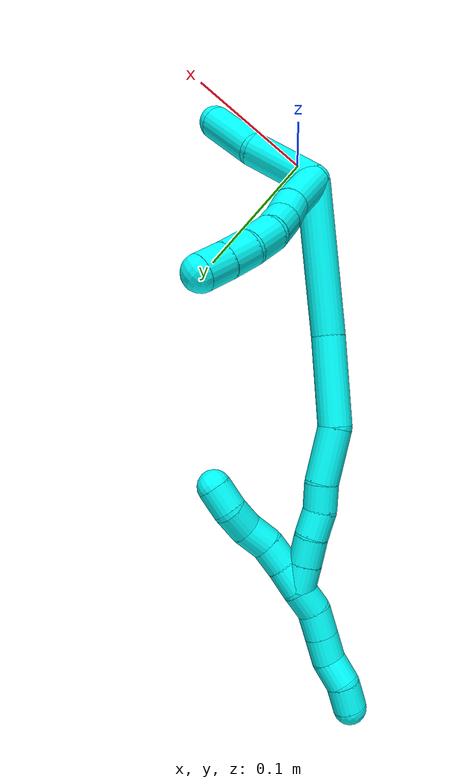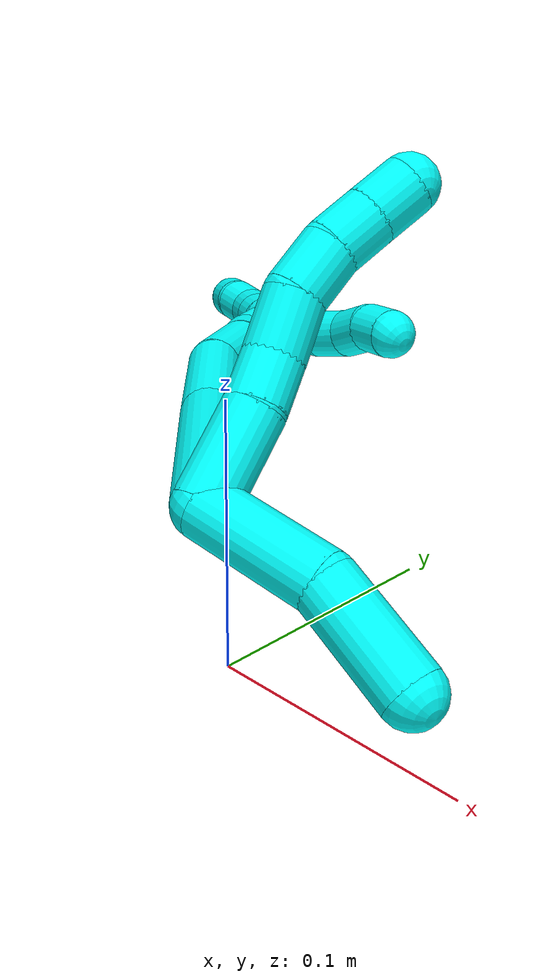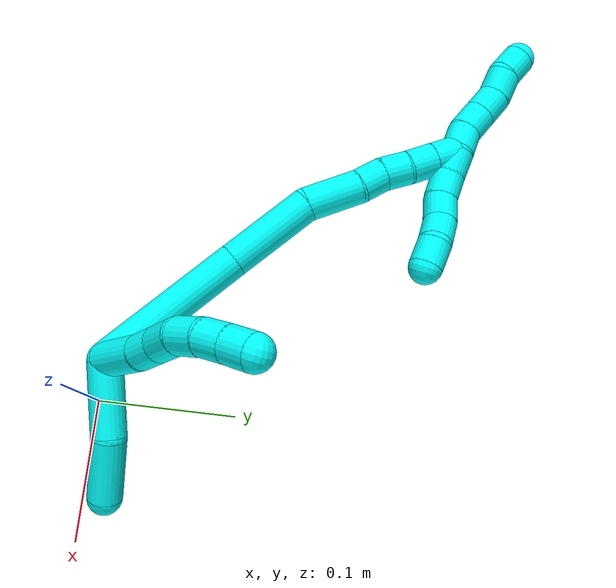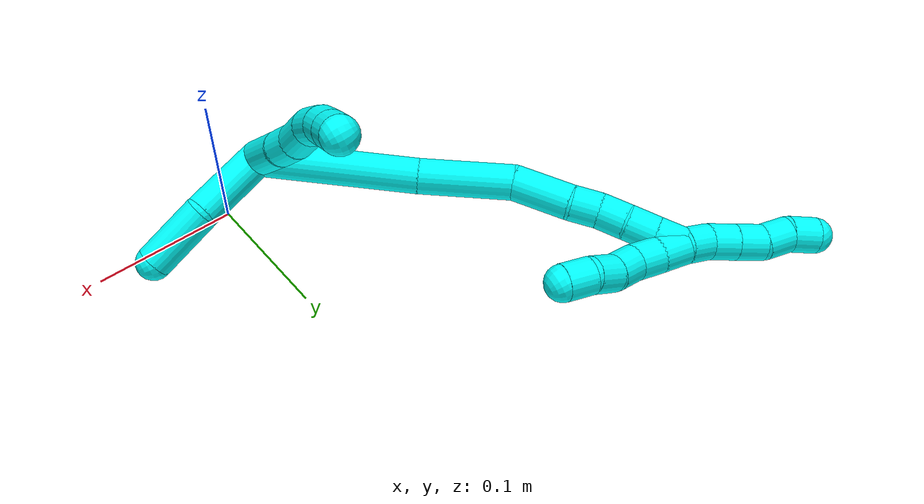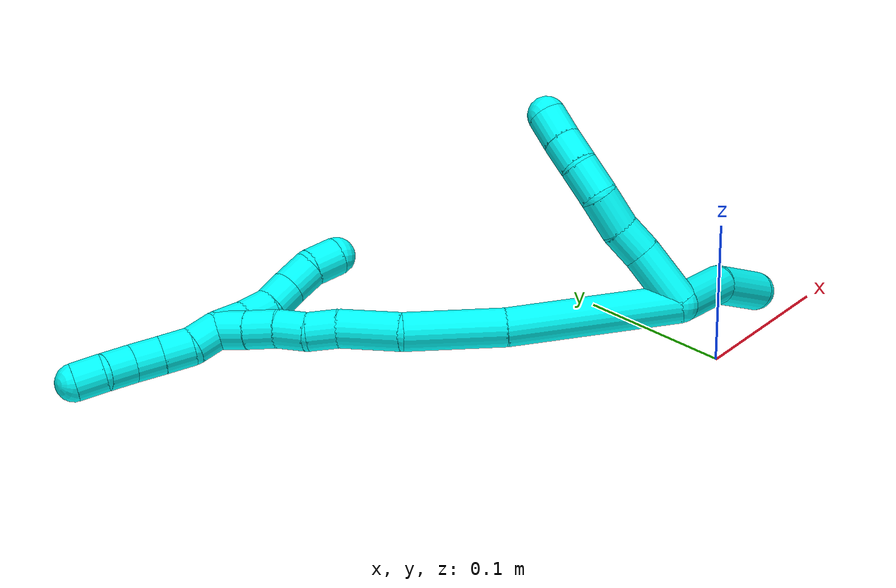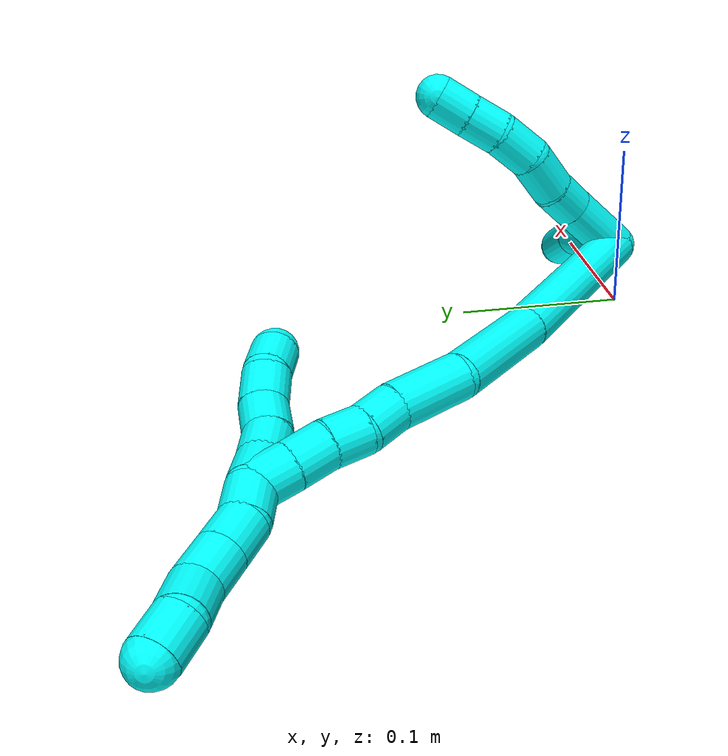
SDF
<sdf version="1.7">
 <world name="default">
  <model name="3">
   <static>0</static>
   <link name="3">
    <collision name="collision-cylinder-e_1_2_8">
     <pose>0.004335 0.018071 0.008075 -1.15056 0.215604 -0.140121</pose>
     <geometry><cylinder><radius>0.0125</radius><length>0.040524</length></cylinder></geometry>
     <surface>
      <friction><ode><mu>1.16</mu><mu2>1.16</mu2><slip1>0</slip1><slip2>0</slip2></ode></friction>
      <contact><ode><kp>1e+06</kp><kd>1</kd><max_vel>0</max_vel><min_depth>0.001</min_depth></ode></contact>
     </surface>
    </collision>
    <visual name="visual-cylinder-e_1_2_8">
     <pose>0.004335 0.018071 0.008075 -1.15056 0.215604 -0.140121</pose>
     <geometry><cylinder><radius>0.0125</radius><length>0.040524</length></cylinder></geometry>
     <material><ambient>0.003922 1 0.996078 1</ambient></material>
    </visual>
    <collision name="collision-cylinder-e_2_8_9">
     <pose>0.010896 0.044747 0.021564 -1.00926 0.215534 -0.119367</pose>
     <geometry><cylinder><radius>0.0125</radius><length>0.020817</length></cylinder></geometry>
     <surface>
      <friction><ode><mu>1.16</mu><mu2>1.16</mu2><slip1>0</slip1><slip2>0</slip2></ode></friction>
      <contact><ode><kp>1e+06</kp><kd>1</kd><max_vel>0</max_vel><min_depth>0.001</min_depth></ode></contact>
     </surface>
    </collision>
    <visual name="visual-cylinder-e_2_8_9">
     <pose>0.010896 0.044747 0.021564 -1.00926 0.215534 -0.119367</pose>
     <geometry><cylinder><radius>0.0125</radius><length>0.020817</length></cylinder></geometry>
     <material><ambient>0.003922 1 0.996078 1</ambient></material>
    </visual>
    <collision name="collision-cylinder-e_3_9_10">
     <pose>0.017865 0.063687 0.032493 -1.08062 0.384808 -0.232663</pose>
     <geometry><cylinder><radius>0.0125</radius><length>0.025274</length></cylinder></geometry>
     <surface>
      <friction><ode><mu>1.16</mu><mu2>1.16</mu2><slip1>0</slip1><slip2>0</slip2></ode></friction>
      <contact><ode><kp>1e+06</kp><kd>1</kd><max_vel>0</max_vel><min_depth>0.001</min_depth></ode></contact>
     </surface>
    </collision>
    <visual name="visual-cylinder-e_3_9_10">
     <pose>0.017865 0.063687 0.032493 -1.08062 0.384808 -0.232663</pose>
     <geometry><cylinder><radius>0.0125</radius><length>0.025274</length></cylinder></geometry>
     <material><ambient>0.003922 1 0.996078 1</ambient></material>
    </visual>
    <collision name="collision-cylinder-e_4_10_11">
     <pose>0.024493 0.085088 0.040811 -1.32266 0.16358 -0.127416</pose>
     <geometry><cylinder><radius>0.0125</radius><length>0.023142</length></cylinder></geometry>
     <surface>
      <friction><ode><mu>1.16</mu><mu2>1.16</mu2><slip1>0</slip1><slip2>0</slip2></ode></friction>
      <contact><ode><kp>1e+06</kp><kd>1</kd><max_vel>0</max_vel><min_depth>0.001</min_depth></ode></contact>
     </surface>
    </collision>
    <visual name="visual-cylinder-e_4_10_11">
     <pose>0.024493 0.085088 0.040811 -1.32266 0.16358 -0.127416</pose>
     <geometry><cylinder><radius>0.0125</radius><length>0.023142</length></cylinder></geometry>
     <material><ambient>0.003922 1 0.996078 1</ambient></material>
    </visual>
    <collision name="collision-cylinder-e_5_11_12">
     <pose>0.026593 0.106209 0.044594 -1.47369 0.021319 -0.019344</pose>
     <geometry><cylinder><radius>0.0125</radius><length>0.020208</length></cylinder></geometry>
     <surface>
      <friction><ode><mu>1.16</mu><mu2>1.16</mu2><slip1>0</slip1><slip2>0</slip2></ode></friction>
      <contact><ode><kp>1e+06</kp><kd>1</kd><max_vel>0</max_vel><min_depth>0.001</min_depth></ode></contact>
     </surface>
    </collision>
    <visual name="visual-cylinder-e_5_11_12">
     <pose>0.026593 0.106209 0.044594 -1.47369 0.021319 -0.019344</pose>
     <geometry><cylinder><radius>0.0125</radius><length>0.020208</length></cylinder></geometry>
     <material><ambient>0.003922 1 0.996078 1</ambient></material>
    </visual>
    <collision name="collision-cylinder-e_6_12_6">
     <pose>0.027237 0.126251 0.046209 -1.50728 0.042817 -0.040181</pose>
     <geometry><cylinder><radius>0.0125</radius><length>0.020035</length></cylinder></geometry>
     <surface>
      <friction><ode><mu>1.16</mu><mu2>1.16</mu2><slip1>0</slip1><slip2>0</slip2></ode></friction>
      <contact><ode><kp>1e+06</kp><kd>1</kd><max_vel>0</max_vel><min_depth>0.001</min_depth></ode></contact>
     </surface>
    </collision>
    <visual name="visual-cylinder-e_6_12_6">
     <pose>0.027237 0.126251 0.046209 -1.50728 0.042817 -0.040181</pose>
     <geometry><cylinder><radius>0.0125</radius><length>0.020035</length></cylinder></geometry>
     <material><ambient>0.003922 1 0.996078 1</ambient></material>
    </visual>
    <collision name="collision-cylinder-e_1_2_13">
     <pose>-0.004964 0.007621 -0.025013 -2.84586 -0.187624 1.12676</pose>
     <geometry><cylinder><radius>0.0125</radius><length>0.053231</length></cylinder></geometry>
     <surface>
      <friction><ode><mu>1.16</mu><mu2>1.16</mu2><slip1>0</slip1><slip2>0</slip2></ode></friction>
      <contact><ode><kp>1e+06</kp><kd>1</kd><max_vel>0</max_vel><min_depth>0.001</min_depth></ode></contact>
     </surface>
    </collision>
    <visual name="visual-cylinder-e_1_2_13">
     <pose>-0.004964 0.007621 -0.025013 -2.84586 -0.187624 1.12676</pose>
     <geometry><cylinder><radius>0.0125</radius><length>0.053231</length></cylinder></geometry>
     <material><ambient>0.003922 1 0.996078 1</ambient></material>
    </visual>
    <collision name="collision-cylinder-e_2_13_5">
     <pose>-0.017343 0.014975 -0.072203 3.12957 -0.322633 -3.06772</pose>
     <geometry><cylinder><radius>0.0125</radius><length>0.046769</length></cylinder></geometry>
     <surface>
      <friction><ode><mu>1.16</mu><mu2>1.16</mu2><slip1>0</slip1><slip2>0</slip2></ode></friction>
      <contact><ode><kp>1e+06</kp><kd>1</kd><max_vel>0</max_vel><min_depth>0.001</min_depth></ode></contact>
     </surface>
    </collision>
    <visual name="visual-cylinder-e_2_13_5">
     <pose>-0.017343 0.014975 -0.072203 3.12957 -0.322633 -3.06772</pose>
     <geometry><cylinder><radius>0.0125</radius><length>0.046769</length></cylinder></geometry>
     <material><ambient>0.003922 1 0.996078 1</ambient></material>
    </visual>
    <collision name="collision-cylinder-e_1_2_14">
     <pose>-0.028045 0.017803 0.044891 -0.377551 -0.526143 0.102814</pose>
     <geometry><cylinder><radius>0.0125</radius><length>0.11169</length></cylinder></geometry>
     <surface>
      <friction><ode><mu>1.16</mu><mu2>1.16</mu2><slip1>0</slip1><slip2>0</slip2></ode></friction>
      <contact><ode><kp>1e+06</kp><kd>1</kd><max_vel>0</max_vel><min_depth>0.001</min_depth></ode></contact>
     </surface>
    </collision>
    <visual name="visual-cylinder-e_1_2_14">
     <pose>-0.028045 0.017803 0.044891 -0.377551 -0.526143 0.102814</pose>
     <geometry><cylinder><radius>0.0125</radius><length>0.11169</length></cylinder></geometry>
     <material><ambient>0.003922 1 0.996078 1</ambient></material>
    </visual>
    <collision name="collision-cylinder-e_2_14_15">
     <pose>-0.07049 0.048342 0.116666 -0.442437 -0.45077 0.103039</pose>
     <geometry><cylinder><radius>0.0125</radius><length>0.066102</length></cylinder></geometry>
     <surface>
      <friction><ode><mu>1.16</mu><mu2>1.16</mu2><slip1>0</slip1><slip2>0</slip2></ode></friction>
      <contact><ode><kp>1e+06</kp><kd>1</kd><max_vel>0</max_vel><min_depth>0.001</min_depth></ode></contact>
     </surface>
    </collision>
    <visual name="visual-cylinder-e_2_14_15">
     <pose>-0.07049 0.048342 0.116666 -0.442437 -0.45077 0.103039</pose>
     <geometry><cylinder><radius>0.0125</radius><length>0.066102</length></cylinder></geometry>
     <material><ambient>0.003922 1 0.996078 1</ambient></material>
    </visual>
    <collision name="collision-cylinder-e_3_15_16">
     <pose>-0.096585 0.072816 0.155817 -0.763363 -0.603282 0.248471</pose>
     <geometry><cylinder><radius>0.0125</radius><length>0.04123</length></cylinder></geometry>
     <surface>
      <friction><ode><mu>1.16</mu><mu2>1.16</mu2><slip1>0</slip1><slip2>0</slip2></ode></friction>
      <contact><ode><kp>1e+06</kp><kd>1</kd><max_vel>0</max_vel><min_depth>0.001</min_depth></ode></contact>
     </surface>
    </collision>
    <visual name="visual-cylinder-e_3_15_16">
     <pose>-0.096585 0.072816 0.155817 -0.763363 -0.603282 0.248471</pose>
     <geometry><cylinder><radius>0.0125</radius><length>0.04123</length></cylinder></geometry>
     <material><ambient>0.003922 1 0.996078 1</ambient></material>
    </visual>
    <collision name="collision-cylinder-e_4_16_17">
     <pose>-0.114372 0.088699 0.175096 -0.533939 -0.641964 0.181366</pose>
     <geometry><cylinder><radius>0.0125</radius><length>0.020347</length></cylinder></geometry>
     <surface>
      <friction><ode><mu>1.16</mu><mu2>1.16</mu2><slip1>0</slip1><slip2>0</slip2></ode></friction>
      <contact><ode><kp>1e+06</kp><kd>1</kd><max_vel>0</max_vel><min_depth>0.001</min_depth></ode></contact>
     </surface>
    </collision>
    <visual name="visual-cylinder-e_4_16_17">
     <pose>-0.114372 0.088699 0.175096 -0.533939 -0.641964 0.181366</pose>
     <geometry><cylinder><radius>0.0125</radius><length>0.020347</length></cylinder></geometry>
     <material><ambient>0.003922 1 0.996078 1</ambient></material>
    </visual>
    <collision name="collision-cylinder-e_5_17_18">
     <pose>-0.126194 0.099126 0.187489 -0.862528 -0.606073 0.285787</pose>
     <geometry><cylinder><radius>0.0125</radius><length>0.02012</length></cylinder></geometry>
     <surface>
      <friction><ode><mu>1.16</mu><mu2>1.16</mu2><slip1>0</slip1><slip2>0</slip2></ode></friction>
      <contact><ode><kp>1e+06</kp><kd>1</kd><max_vel>0</max_vel><min_depth>0.001</min_depth></ode></contact>
     </surface>
    </collision>
    <visual name="visual-cylinder-e_5_17_18">
     <pose>-0.126194 0.099126 0.187489 -0.862528 -0.606073 0.285787</pose>
     <geometry><cylinder><radius>0.0125</radius><length>0.02012</length></cylinder></geometry>
     <material><ambient>0.003922 1 0.996078 1</ambient></material>
    </visual>
    <collision name="collision-cylinder-e_6_18_19">
     <pose>-0.138549 0.1106 0.198725 -0.725592 -0.702232 0.276317</pose>
     <geometry><cylinder><radius>0.0125</radius><length>0.02051</length></cylinder></geometry>
     <surface>
      <friction><ode><mu>1.16</mu><mu2>1.16</mu2><slip1>0</slip1><slip2>0</slip2></ode></friction>
      <contact><ode><kp>1e+06</kp><kd>1</kd><max_vel>0</max_vel><min_depth>0.001</min_depth></ode></contact>
     </surface>
    </collision>
    <visual name="visual-cylinder-e_6_18_19">
     <pose>-0.138549 0.1106 0.198725 -0.725592 -0.702232 0.276317</pose>
     <geometry><cylinder><radius>0.0125</radius><length>0.02051</length></cylinder></geometry>
     <material><ambient>0.003922 1 0.996078 1</ambient></material>
    </visual>
    <collision name="collision-cylinder-e_7_19_1">
     <pose>-0.151387 0.121174 0.210279 -0.756562 -0.670511 0.275179</pose>
     <geometry><cylinder><radius>0.0125</radius><length>0.020001</length></cylinder></geometry>
     <surface>
      <friction><ode><mu>1.16</mu><mu2>1.16</mu2><slip1>0</slip1><slip2>0</slip2></ode></friction>
      <contact><ode><kp>1e+06</kp><kd>1</kd><max_vel>0</max_vel><min_depth>0.001</min_depth></ode></contact>
     </surface>
    </collision>
    <visual name="visual-cylinder-e_7_19_1">
     <pose>-0.151387 0.121174 0.210279 -0.756562 -0.670511 0.275179</pose>
     <geometry><cylinder><radius>0.0125</radius><length>0.020001</length></cylinder></geometry>
     <material><ambient>0.003922 1 0.996078 1</ambient></material>
    </visual>
    <collision name="collision-cylinder-e_1_1_20">
     <pose>-0.155078 0.127245 0.206326 -3.0699 0.255107 -2.5963</pose>
     <geometry><cylinder><radius>0.0125</radius><length>0.02</length></cylinder></geometry>
     <surface>
      <friction><ode><mu>1.16</mu><mu2>1.16</mu2><slip1>0</slip1><slip2>0</slip2></ode></friction>
      <contact><ode><kp>1e+06</kp><kd>1</kd><max_vel>0</max_vel><min_depth>0.001</min_depth></ode></contact>
     </surface>
    </collision>
    <visual name="visual-cylinder-e_1_1_20">
     <pose>-0.155078 0.127245 0.206326 -3.0699 0.255107 -2.5963</pose>
     <geometry><cylinder><radius>0.0125</radius><length>0.02</length></cylinder></geometry>
     <material><ambient>0.003922 1 0.996078 1</ambient></material>
    </visual>
    <collision name="collision-cylinder-e_2_20_21">
     <pose>-0.149443 0.129415 0.187286 -2.98558 0.316341 -2.23029</pose>
     <geometry><cylinder><radius>0.0125</radius><length>0.02</length></cylinder></geometry>
     <surface>
      <friction><ode><mu>1.16</mu><mu2>1.16</mu2><slip1>0</slip1><slip2>0</slip2></ode></friction>
      <contact><ode><kp>1e+06</kp><kd>1</kd><max_vel>0</max_vel><min_depth>0.001</min_depth></ode></contact>
     </surface>
    </collision>
    <visual name="visual-cylinder-e_2_20_21">
     <pose>-0.149443 0.129415 0.187286 -2.98558 0.316341 -2.23029</pose>
     <geometry><cylinder><radius>0.0125</radius><length>0.02</length></cylinder></geometry>
     <material><ambient>0.003922 1 0.996078 1</ambient></material>
    </visual>
    <collision name="collision-cylinder-e_3_21_22">
     <pose>-0.143427 0.135155 0.169331 -2.67975 0.294742 -1.12636</pose>
     <geometry><cylinder><radius>0.0125</radius><length>0.02</length></cylinder></geometry>
     <surface>
      <friction><ode><mu>1.16</mu><mu2>1.16</mu2><slip1>0</slip1><slip2>0</slip2></ode></friction>
      <contact><ode><kp>1e+06</kp><kd>1</kd><max_vel>0</max_vel><min_depth>0.001</min_depth></ode></contact>
     </surface>
    </collision>
    <visual name="visual-cylinder-e_3_21_22">
     <pose>-0.143427 0.135155 0.169331 -2.67975 0.294742 -1.12636</pose>
     <geometry><cylinder><radius>0.0125</radius><length>0.02</length></cylinder></geometry>
     <material><ambient>0.003922 1 0.996078 1</ambient></material>
    </visual>
    <collision name="collision-cylinder-e_4_22_23">
     <pose>-0.135192 0.142578 0.152915 -2.75899 0.56217 -1.95992</pose>
     <geometry><cylinder><radius>0.0125</radius><length>0.02</length></cylinder></geometry>
     <surface>
      <friction><ode><mu>1.16</mu><mu2>1.16</mu2><slip1>0</slip1><slip2>0</slip2></ode></friction>
      <contact><ode><kp>1e+06</kp><kd>1</kd><max_vel>0</max_vel><min_depth>0.001</min_depth></ode></contact>
     </surface>
    </collision>
    <visual name="visual-cylinder-e_4_22_23">
     <pose>-0.135192 0.142578 0.152915 -2.75899 0.56217 -1.95992</pose>
     <geometry><cylinder><radius>0.0125</radius><length>0.02</length></cylinder></geometry>
     <material><ambient>0.003922 1 0.996078 1</ambient></material>
    </visual>
    <collision name="collision-cylinder-e_5_23_4">
     <pose>-0.126576 0.146776 0.135679 -3.03135 0.334841 -2.51042</pose>
     <geometry><cylinder><radius>0.0125</radius><length>0.02</length></cylinder></geometry>
     <surface>
      <friction><ode><mu>1.16</mu><mu2>1.16</mu2><slip1>0</slip1><slip2>0</slip2></ode></friction>
      <contact><ode><kp>1e+06</kp><kd>1</kd><max_vel>0</max_vel><min_depth>0.001</min_depth></ode></contact>
     </surface>
    </collision>
    <visual name="visual-cylinder-e_5_23_4">
     <pose>-0.126576 0.146776 0.135679 -3.03135 0.334841 -2.51042</pose>
     <geometry><cylinder><radius>0.0125</radius><length>0.02</length></cylinder></geometry>
     <material><ambient>0.003922 1 0.996078 1</ambient></material>
    </visual>
    <collision name="collision-cylinder-e_1_1_24">
     <pose>-0.161934 0.124627 0.224782 0.215224 -0.448133 -0.049228</pose>
     <geometry><cylinder><radius>0.0125</radius><length>0.02</length></cylinder></geometry>
     <surface>
      <friction><ode><mu>1.16</mu><mu2>1.16</mu2><slip1>0</slip1><slip2>0</slip2></ode></friction>
      <contact><ode><kp>1e+06</kp><kd>1</kd><max_vel>0</max_vel><min_depth>0.001</min_depth></ode></contact>
     </surface>
    </collision>
    <visual name="visual-cylinder-e_1_1_24">
     <pose>-0.161934 0.124627 0.224782 0.215224 -0.448133 -0.049228</pose>
     <geometry><cylinder><radius>0.0125</radius><length>0.02</length></cylinder></geometry>
     <material><ambient>0.003922 1 0.996078 1</ambient></material>
    </visual>
    <collision name="collision-cylinder-e_2_24_25">
     <pose>-0.171156 0.124027 0.242208 -0.152444 -0.510893 0.039883</pose>
     <geometry><cylinder><radius>0.0125</radius><length>0.02</length></cylinder></geometry>
     <surface>
      <friction><ode><mu>1.16</mu><mu2>1.16</mu2><slip1>0</slip1><slip2>0</slip2></ode></friction>
      <contact><ode><kp>1e+06</kp><kd>1</kd><max_vel>0</max_vel><min_depth>0.001</min_depth></ode></contact>
     </surface>
    </collision>
    <visual name="visual-cylinder-e_2_24_25">
     <pose>-0.171156 0.124027 0.242208 -0.152444 -0.510893 0.039883</pose>
     <geometry><cylinder><radius>0.0125</radius><length>0.02</length></cylinder></geometry>
     <material><ambient>0.003922 1 0.996078 1</ambient></material>
    </visual>
    <collision name="collision-cylinder-e_3_25_26">
     <pose>-0.180889 0.126744 0.259468 -0.159769 -0.505552 0.041351</pose>
     <geometry><cylinder><radius>0.0125</radius><length>0.02</length></cylinder></geometry>
     <surface>
      <friction><ode><mu>1.16</mu><mu2>1.16</mu2><slip1>0</slip1><slip2>0</slip2></ode></friction>
      <contact><ode><kp>1e+06</kp><kd>1</kd><max_vel>0</max_vel><min_depth>0.001</min_depth></ode></contact>
     </surface>
    </collision>
    <visual name="visual-cylinder-e_3_25_26">
     <pose>-0.180889 0.126744 0.259468 -0.159769 -0.505552 0.041351</pose>
     <geometry><cylinder><radius>0.0125</radius><length>0.02</length></cylinder></geometry>
     <material><ambient>0.003922 1 0.996078 1</ambient></material>
    </visual>
    <collision name="collision-cylinder-e_4_26_27">
     <pose>-0.188164 0.127991 0.277804 0.014924 -0.245685 -0.001843</pose>
     <geometry><cylinder><radius>0.0125</radius><length>0.02</length></cylinder></geometry>
     <surface>
      <friction><ode><mu>1.16</mu><mu2>1.16</mu2><slip1>0</slip1><slip2>0</slip2></ode></friction>
      <contact><ode><kp>1e+06</kp><kd>1</kd><max_vel>0</max_vel><min_depth>0.001</min_depth></ode></contact>
     </surface>
    </collision>
    <visual name="visual-cylinder-e_4_26_27">
     <pose>-0.188164 0.127991 0.277804 0.014924 -0.245685 -0.001843</pose>
     <geometry><cylinder><radius>0.0125</radius><length>0.02</length></cylinder></geometry>
     <material><ambient>0.003922 1 0.996078 1</ambient></material>
    </visual>
    <collision name="collision-cylinder-e_5_27_3">
     <pose>-0.195834 0.12903 0.295939 -0.139482 -0.551226 0.039506</pose>
     <geometry><cylinder><radius>0.0125</radius><length>0.02</length></cylinder></geometry>
     <surface>
      <friction><ode><mu>1.16</mu><mu2>1.16</mu2><slip1>0</slip1><slip2>0</slip2></ode></friction>
      <contact><ode><kp>1e+06</kp><kd>1</kd><max_vel>0</max_vel><min_depth>0.001</min_depth></ode></contact>
     </surface>
    </collision>
    <visual name="visual-cylinder-e_5_27_3">
     <pose>-0.195834 0.12903 0.295939 -0.139482 -0.551226 0.039506</pose>
     <geometry><cylinder><radius>0.0125</radius><length>0.02</length></cylinder></geometry>
     <material><ambient>0.003922 1 0.996078 1</ambient></material>
    </visual>
    <collision name="collision-sphere-3">
     <pose>-0.201071 0.130215 0.304375 0 -0 0</pose>
     <geometry><sphere><radius>0.0125</radius></sphere></geometry>
     <surface>
      <friction><ode><mu>1.16</mu><mu2>1.16</mu2><slip1>0</slip1><slip2>0</slip2></ode></friction>
      <contact><ode><kp>1e+06</kp><kd>1</kd><max_vel>0</max_vel><min_depth>0.001</min_depth></ode></contact>
     </surface>
    </collision>
    <visual name="visual-sphere-3">
     <pose>-0.201071 0.130215 0.304375 0 -0 0</pose>
     <geometry><sphere><radius>0.0125</radius></sphere></geometry>
     <material><ambient>0.003922 1 0.996078 1</ambient></material>
    </visual>
    <collision name="collision-sphere-27">
     <pose>-0.190596 0.127846 0.287503 0 -0 0</pose>
     <geometry><sphere><radius>0.0125</radius></sphere></geometry>
     <surface>
      <friction><ode><mu>1.16</mu><mu2>1.16</mu2><slip1>0</slip1><slip2>0</slip2></ode></friction>
      <contact><ode><kp>1e+06</kp><kd>1</kd><max_vel>0</max_vel><min_depth>0.001</min_depth></ode></contact>
     </surface>
    </collision>
    <visual name="visual-sphere-27">
     <pose>-0.190596 0.127846 0.287503 0 -0 0</pose>
     <geometry><sphere><radius>0.0125</radius></sphere></geometry>
     <material><ambient>0.003922 1 0.996078 1</ambient></material>
    </visual>
    <collision name="collision-sphere-26">
     <pose>-0.185732 0.128136 0.268105 0 -0 0</pose>
     <geometry><sphere><radius>0.0125</radius></sphere></geometry>
     <surface>
      <friction><ode><mu>1.16</mu><mu2>1.16</mu2><slip1>0</slip1><slip2>0</slip2></ode></friction>
      <contact><ode><kp>1e+06</kp><kd>1</kd><max_vel>0</max_vel><min_depth>0.001</min_depth></ode></contact>
     </surface>
    </collision>
    <visual name="visual-sphere-26">
     <pose>-0.185732 0.128136 0.268105 0 -0 0</pose>
     <geometry><sphere><radius>0.0125</radius></sphere></geometry>
     <material><ambient>0.003922 1 0.996078 1</ambient></material>
    </visual>
    <collision name="collision-sphere-25">
     <pose>-0.176046 0.125352 0.25083 0 -0 0</pose>
     <geometry><sphere><radius>0.0125</radius></sphere></geometry>
     <surface>
      <friction><ode><mu>1.16</mu><mu2>1.16</mu2><slip1>0</slip1><slip2>0</slip2></ode></friction>
      <contact><ode><kp>1e+06</kp><kd>1</kd><max_vel>0</max_vel><min_depth>0.001</min_depth></ode></contact>
     </surface>
    </collision>
    <visual name="visual-sphere-25">
     <pose>-0.176046 0.125352 0.25083 0 -0 0</pose>
     <geometry><sphere><radius>0.0125</radius></sphere></geometry>
     <material><ambient>0.003922 1 0.996078 1</ambient></material>
    </visual>
    <collision name="collision-sphere-24">
     <pose>-0.166267 0.122703 0.233586 0 -0 0</pose>
     <geometry><sphere><radius>0.0125</radius></sphere></geometry>
     <surface>
      <friction><ode><mu>1.16</mu><mu2>1.16</mu2><slip1>0</slip1><slip2>0</slip2></ode></friction>
      <contact><ode><kp>1e+06</kp><kd>1</kd><max_vel>0</max_vel><min_depth>0.001</min_depth></ode></contact>
     </surface>
    </collision>
    <visual name="visual-sphere-24">
     <pose>-0.166267 0.122703 0.233586 0 -0 0</pose>
     <geometry><sphere><radius>0.0125</radius></sphere></geometry>
     <material><ambient>0.003922 1 0.996078 1</ambient></material>
    </visual>
    <collision name="collision-sphere-4">
     <pose>-0.12329 0.147815 0.126292 0 -0 0</pose>
     <geometry><sphere><radius>0.0125</radius></sphere></geometry>
     <surface>
      <friction><ode><mu>1.16</mu><mu2>1.16</mu2><slip1>0</slip1><slip2>0</slip2></ode></friction>
      <contact><ode><kp>1e+06</kp><kd>1</kd><max_vel>0</max_vel><min_depth>0.001</min_depth></ode></contact>
     </surface>
    </collision>
    <visual name="visual-sphere-4">
     <pose>-0.12329 0.147815 0.126292 0 -0 0</pose>
     <geometry><sphere><radius>0.0125</radius></sphere></geometry>
     <material><ambient>0.003922 1 0.996078 1</ambient></material>
    </visual>
    <collision name="collision-sphere-23">
     <pose>-0.129862 0.145737 0.145066 0 -0 0</pose>
     <geometry><sphere><radius>0.0125</radius></sphere></geometry>
     <surface>
      <friction><ode><mu>1.16</mu><mu2>1.16</mu2><slip1>0</slip1><slip2>0</slip2></ode></friction>
      <contact><ode><kp>1e+06</kp><kd>1</kd><max_vel>0</max_vel><min_depth>0.001</min_depth></ode></contact>
     </surface>
    </collision>
    <visual name="visual-sphere-23">
     <pose>-0.129862 0.145737 0.145066 0 -0 0</pose>
     <geometry><sphere><radius>0.0125</radius></sphere></geometry>
     <material><ambient>0.003922 1 0.996078 1</ambient></material>
    </visual>
    <collision name="collision-sphere-22">
     <pose>-0.140523 0.139419 0.160765 0 -0 0</pose>
     <geometry><sphere><radius>0.0125</radius></sphere></geometry>
     <surface>
      <friction><ode><mu>1.16</mu><mu2>1.16</mu2><slip1>0</slip1><slip2>0</slip2></ode></friction>
      <contact><ode><kp>1e+06</kp><kd>1</kd><max_vel>0</max_vel><min_depth>0.001</min_depth></ode></contact>
     </surface>
    </collision>
    <visual name="visual-sphere-22">
     <pose>-0.140523 0.139419 0.160765 0 -0 0</pose>
     <geometry><sphere><radius>0.0125</radius></sphere></geometry>
     <material><ambient>0.003922 1 0.996078 1</ambient></material>
    </visual>
    <collision name="collision-sphere-21">
     <pose>-0.146332 0.130892 0.177897 0 -0 0</pose>
     <geometry><sphere><radius>0.0125</radius></sphere></geometry>
     <surface>
      <friction><ode><mu>1.16</mu><mu2>1.16</mu2><slip1>0</slip1><slip2>0</slip2></ode></friction>
      <contact><ode><kp>1e+06</kp><kd>1</kd><max_vel>0</max_vel><min_depth>0.001</min_depth></ode></contact>
     </surface>
    </collision>
    <visual name="visual-sphere-21">
     <pose>-0.146332 0.130892 0.177897 0 -0 0</pose>
     <geometry><sphere><radius>0.0125</radius></sphere></geometry>
     <material><ambient>0.003922 1 0.996078 1</ambient></material>
    </visual>
    <collision name="collision-sphere-20">
     <pose>-0.152554 0.127938 0.196674 0 -0 0</pose>
     <geometry><sphere><radius>0.0125</radius></sphere></geometry>
     <surface>
      <friction><ode><mu>1.16</mu><mu2>1.16</mu2><slip1>0</slip1><slip2>0</slip2></ode></friction>
      <contact><ode><kp>1e+06</kp><kd>1</kd><max_vel>0</max_vel><min_depth>0.001</min_depth></ode></contact>
     </surface>
    </collision>
    <visual name="visual-sphere-20">
     <pose>-0.152554 0.127938 0.196674 0 -0 0</pose>
     <geometry><sphere><radius>0.0125</radius></sphere></geometry>
     <material><ambient>0.003922 1 0.996078 1</ambient></material>
    </visual>
    <collision name="collision-sphere-12">
     <pose>0.026809 0.116263 0.045573 0 -0 0</pose>
     <geometry><sphere><radius>0.0125</radius></sphere></geometry>
     <surface>
      <friction><ode><mu>1.16</mu><mu2>1.16</mu2><slip1>0</slip1><slip2>0</slip2></ode></friction>
      <contact><ode><kp>1e+06</kp><kd>1</kd><max_vel>0</max_vel><min_depth>0.001</min_depth></ode></contact>
     </surface>
    </collision>
    <visual name="visual-sphere-12">
     <pose>0.026809 0.116263 0.045573 0 -0 0</pose>
     <geometry><sphere><radius>0.0125</radius></sphere></geometry>
     <material><ambient>0.003922 1 0.996078 1</ambient></material>
    </visual>
    <collision name="collision-sphere-11">
     <pose>0.026378 0.096155 0.043615 0 -0 0</pose>
     <geometry><sphere><radius>0.0125</radius></sphere></geometry>
     <surface>
      <friction><ode><mu>1.16</mu><mu2>1.16</mu2><slip1>0</slip1><slip2>0</slip2></ode></friction>
      <contact><ode><kp>1e+06</kp><kd>1</kd><max_vel>0</max_vel><min_depth>0.001</min_depth></ode></contact>
     </surface>
    </collision>
    <visual name="visual-sphere-11">
     <pose>0.026378 0.096155 0.043615 0 -0 0</pose>
     <geometry><sphere><radius>0.0125</radius></sphere></geometry>
     <material><ambient>0.003922 1 0.996078 1</ambient></material>
    </visual>
    <collision name="collision-sphere-10">
     <pose>0.022609 0.074021 0.038007 0 -0 0</pose>
     <geometry><sphere><radius>0.0125</radius></sphere></geometry>
     <surface>
      <friction><ode><mu>1.16</mu><mu2>1.16</mu2><slip1>0</slip1><slip2>0</slip2></ode></friction>
      <contact><ode><kp>1e+06</kp><kd>1</kd><max_vel>0</max_vel><min_depth>0.001</min_depth></ode></contact>
     </surface>
    </collision>
    <visual name="visual-sphere-10">
     <pose>0.022609 0.074021 0.038007 0 -0 0</pose>
     <geometry><sphere><radius>0.0125</radius></sphere></geometry>
     <material><ambient>0.003922 1 0.996078 1</ambient></material>
    </visual>
    <collision name="collision-sphere-9">
     <pose>0.013122 0.053354 0.026978 0 -0 0</pose>
     <geometry><sphere><radius>0.0125</radius></sphere></geometry>
     <surface>
      <friction><ode><mu>1.16</mu><mu2>1.16</mu2><slip1>0</slip1><slip2>0</slip2></ode></friction>
      <contact><ode><kp>1e+06</kp><kd>1</kd><max_vel>0</max_vel><min_depth>0.001</min_depth></ode></contact>
     </surface>
    </collision>
    <visual name="visual-sphere-9">
     <pose>0.013122 0.053354 0.026978 0 -0 0</pose>
     <geometry><sphere><radius>0.0125</radius></sphere></geometry>
     <material><ambient>0.003922 1 0.996078 1</ambient></material>
    </visual>
    <collision name="collision-sphere-2">
     <geometry><sphere><radius>0.0125</radius></sphere></geometry>
     <surface>
      <friction><ode><mu>1.16</mu><mu2>1.16</mu2><slip1>0</slip1><slip2>0</slip2></ode></friction>
      <contact><ode><kp>1e+06</kp><kd>1</kd><max_vel>0</max_vel><min_depth>0.001</min_depth></ode></contact>
     </surface>
    </collision>
    <visual name="visual-sphere-2">
     <geometry><sphere><radius>0.0125</radius></sphere></geometry>
     <material><ambient>0.003922 1 0.996078 1</ambient></material>
    </visual>
    <collision name="collision-sphere-19">
     <pose>-0.145173 0.115795 0.204581 0 -0 0</pose>
     <geometry><sphere><radius>0.0125</radius></sphere></geometry>
     <surface>
      <friction><ode><mu>1.16</mu><mu2>1.16</mu2><slip1>0</slip1><slip2>0</slip2></ode></friction>
      <contact><ode><kp>1e+06</kp><kd>1</kd><max_vel>0</max_vel><min_depth>0.001</min_depth></ode></contact>
     </surface>
    </collision>
    <visual name="visual-sphere-19">
     <pose>-0.145173 0.115795 0.204581 0 -0 0</pose>
     <geometry><sphere><radius>0.0125</radius></sphere></geometry>
     <material><ambient>0.003922 1 0.996078 1</ambient></material>
    </visual>
    <collision name="collision-sphere-8">
     <pose>0.00867 0.036141 0.01615 0 -0 0</pose>
     <geometry><sphere><radius>0.0125</radius></sphere></geometry>
     <surface>
      <friction><ode><mu>1.16</mu><mu2>1.16</mu2><slip1>0</slip1><slip2>0</slip2></ode></friction>
      <contact><ode><kp>1e+06</kp><kd>1</kd><max_vel>0</max_vel><min_depth>0.001</min_depth></ode></contact>
     </surface>
    </collision>
    <visual name="visual-sphere-8">
     <pose>0.00867 0.036141 0.01615 0 -0 0</pose>
     <geometry><sphere><radius>0.0125</radius></sphere></geometry>
     <material><ambient>0.003922 1 0.996078 1</ambient></material>
    </visual>
    <collision name="collision-sphere-6">
     <pose>0.027666 0.13624 0.046844 0 -0 0</pose>
     <geometry><sphere><radius>0.0125</radius></sphere></geometry>
     <surface>
      <friction><ode><mu>1.16</mu><mu2>1.16</mu2><slip1>0</slip1><slip2>0</slip2></ode></friction>
      <contact><ode><kp>1e+06</kp><kd>1</kd><max_vel>0</max_vel><min_depth>0.001</min_depth></ode></contact>
     </surface>
    </collision>
    <visual name="visual-sphere-6">
     <pose>0.027666 0.13624 0.046844 0 -0 0</pose>
     <geometry><sphere><radius>0.0125</radius></sphere></geometry>
     <material><ambient>0.003922 1 0.996078 1</ambient></material>
    </visual>
    <collision name="collision-sphere-13">
     <pose>-0.009929 0.015241 -0.050027 0 -0 0</pose>
     <geometry><sphere><radius>0.0125</radius></sphere></geometry>
     <surface>
      <friction><ode><mu>1.16</mu><mu2>1.16</mu2><slip1>0</slip1><slip2>0</slip2></ode></friction>
      <contact><ode><kp>1e+06</kp><kd>1</kd><max_vel>0</max_vel><min_depth>0.001</min_depth></ode></contact>
     </surface>
    </collision>
    <visual name="visual-sphere-13">
     <pose>-0.009929 0.015241 -0.050027 0 -0 0</pose>
     <geometry><sphere><radius>0.0125</radius></sphere></geometry>
     <material><ambient>0.003922 1 0.996078 1</ambient></material>
    </visual>
    <collision name="collision-sphere-5">
     <pose>-0.024758 0.014708 -0.094379 0 -0 0</pose>
     <geometry><sphere><radius>0.0125</radius></sphere></geometry>
     <surface>
      <friction><ode><mu>1.16</mu><mu2>1.16</mu2><slip1>0</slip1><slip2>0</slip2></ode></friction>
      <contact><ode><kp>1e+06</kp><kd>1</kd><max_vel>0</max_vel><min_depth>0.001</min_depth></ode></contact>
     </surface>
    </collision>
    <visual name="visual-sphere-5">
     <pose>-0.024758 0.014708 -0.094379 0 -0 0</pose>
     <geometry><sphere><radius>0.0125</radius></sphere></geometry>
     <material><ambient>0.003922 1 0.996078 1</ambient></material>
    </visual>
    <collision name="collision-sphere-14">
     <pose>-0.056091 0.035605 0.089781 0 -0 0</pose>
     <geometry><sphere><radius>0.0125</radius></sphere></geometry>
     <surface>
      <friction><ode><mu>1.16</mu><mu2>1.16</mu2><slip1>0</slip1><slip2>0</slip2></ode></friction>
      <contact><ode><kp>1e+06</kp><kd>1</kd><max_vel>0</max_vel><min_depth>0.001</min_depth></ode></contact>
     </surface>
    </collision>
    <visual name="visual-sphere-14">
     <pose>-0.056091 0.035605 0.089781 0 -0 0</pose>
     <geometry><sphere><radius>0.0125</radius></sphere></geometry>
     <material><ambient>0.003922 1 0.996078 1</ambient></material>
    </visual>
    <collision name="collision-sphere-15">
     <pose>-0.084889 0.061079 0.143551 0 -0 0</pose>
     <geometry><sphere><radius>0.0125</radius></sphere></geometry>
     <surface>
      <friction><ode><mu>1.16</mu><mu2>1.16</mu2><slip1>0</slip1><slip2>0</slip2></ode></friction>
      <contact><ode><kp>1e+06</kp><kd>1</kd><max_vel>0</max_vel><min_depth>0.001</min_depth></ode></contact>
     </surface>
    </collision>
    <visual name="visual-sphere-15">
     <pose>-0.084889 0.061079 0.143551 0 -0 0</pose>
     <geometry><sphere><radius>0.0125</radius></sphere></geometry>
     <material><ambient>0.003922 1 0.996078 1</ambient></material>
    </visual>
    <collision name="collision-sphere-16">
     <pose>-0.108281 0.084552 0.168082 0 -0 0</pose>
     <geometry><sphere><radius>0.0125</radius></sphere></geometry>
     <surface>
      <friction><ode><mu>1.16</mu><mu2>1.16</mu2><slip1>0</slip1><slip2>0</slip2></ode></friction>
      <contact><ode><kp>1e+06</kp><kd>1</kd><max_vel>0</max_vel><min_depth>0.001</min_depth></ode></contact>
     </surface>
    </collision>
    <visual name="visual-sphere-16">
     <pose>-0.108281 0.084552 0.168082 0 -0 0</pose>
     <geometry><sphere><radius>0.0125</radius></sphere></geometry>
     <material><ambient>0.003922 1 0.996078 1</ambient></material>
    </visual>
    <collision name="collision-sphere-17">
     <pose>-0.120464 0.092846 0.18211 0 -0 0</pose>
     <geometry><sphere><radius>0.0125</radius></sphere></geometry>
     <surface>
      <friction><ode><mu>1.16</mu><mu2>1.16</mu2><slip1>0</slip1><slip2>0</slip2></ode></friction>
      <contact><ode><kp>1e+06</kp><kd>1</kd><max_vel>0</max_vel><min_depth>0.001</min_depth></ode></contact>
     </surface>
    </collision>
    <visual name="visual-sphere-17">
     <pose>-0.120464 0.092846 0.18211 0 -0 0</pose>
     <geometry><sphere><radius>0.0125</radius></sphere></geometry>
     <material><ambient>0.003922 1 0.996078 1</ambient></material>
    </visual>
    <collision name="collision-sphere-18">
     <pose>-0.131925 0.105405 0.192868 0 -0 0</pose>
     <geometry><sphere><radius>0.0125</radius></sphere></geometry>
     <surface>
      <friction><ode><mu>1.16</mu><mu2>1.16</mu2><slip1>0</slip1><slip2>0</slip2></ode></friction>
      <contact><ode><kp>1e+06</kp><kd>1</kd><max_vel>0</max_vel><min_depth>0.001</min_depth></ode></contact>
     </surface>
    </collision>
    <visual name="visual-sphere-18">
     <pose>-0.131925 0.105405 0.192868 0 -0 0</pose>
     <geometry><sphere><radius>0.0125</radius></sphere></geometry>
     <material><ambient>0.003922 1 0.996078 1</ambient></material>
    </visual>
    <collision name="collision-sphere-1">
     <pose>-0.157601 0.126552 0.215977 0 -0 0</pose>
     <geometry><sphere><radius>0.0125</radius></sphere></geometry>
     <surface>
      <friction><ode><mu>1.16</mu><mu2>1.16</mu2><slip1>0</slip1><slip2>0</slip2></ode></friction>
      <contact><ode><kp>1e+06</kp><kd>1</kd><max_vel>0</max_vel><min_depth>0.001</min_depth></ode></contact>
     </surface>
    </collision>
    <visual name="visual-sphere-1">
     <pose>-0.157601 0.126552 0.215977 0 -0 0</pose>
     <geometry><sphere><radius>0.0125</radius></sphere></geometry>
     <material><ambient>0.003922 1 0.996078 1</ambient></material>
    </visual>
    <inertial>
     <pose>-0.07098 0.071964 0.103282 0 -0 0</pose>
     <mass>0.75</mass>
     <inertia><ixx>0.000162</ixx><ixy>0</ixy><ixz>0</ixz><iyy>0.000216</iyy><iyz>0</iyz><izz>2e-05</izz></inertia>
    </inertial>
   </link>
   <pose>-0.024654 0.011903 0.049369 1.09548 -1.02036 -1.35941</pose>
  </model>
 </world>
</sdf>
